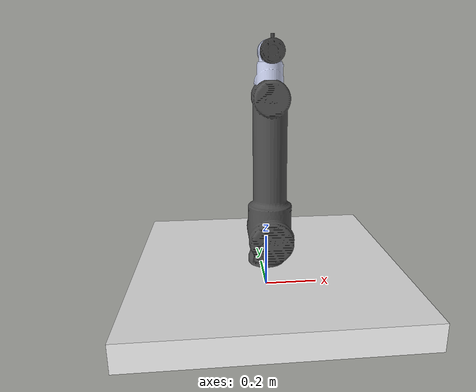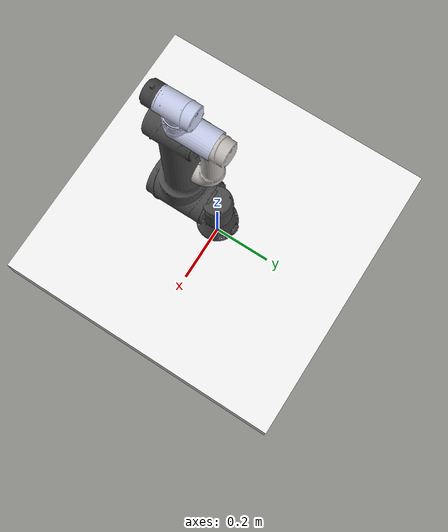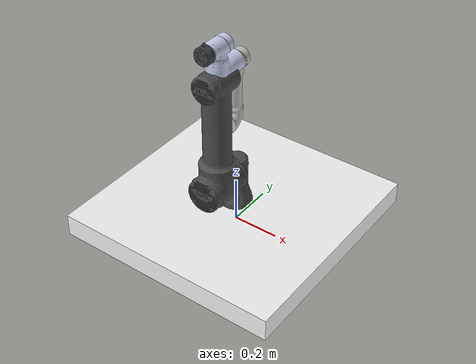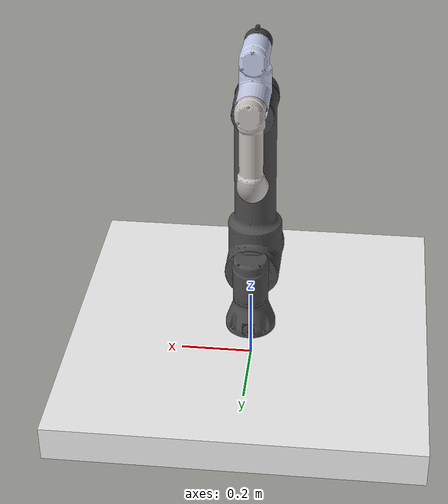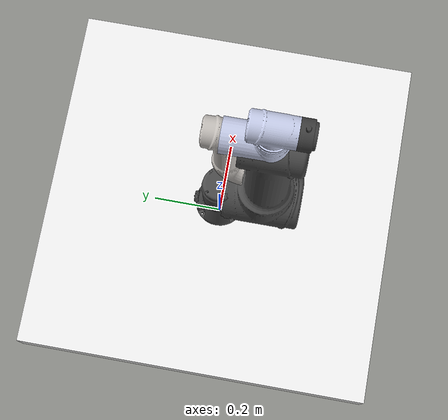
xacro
<?xml version="1.0"?>
<robot name="aubo_e3" xmlns:xacro="http://ros.org/wiki/xacro">

 <!-- Defining the colors used in this robot -->
    <material name="Black">
        <color rgba="0 0 0 1"/>
    </material>

    <material name="White">
        <color rgba="1 1 1 1"/>
    </material>

    <material name="Blue">
        <color rgba="0 0 1 1"/>
    </material>

    <material name="Red">
        <color rgba="1 0 0 1"/>
    </material>

    <material name="Grey">
        <color rgba="0.96 0.96 0.96 1"/>
    </material>

    <!-- Constants -->
    <xacro:property name="M_PI" value="3.14159"/>

<!--/////////////////// DYNAMICS PARAM //////////////////////-->

    <xacro:macro name="I3_Shoulder_Inertia">
        <origin xyz="0.0
                     0.006
                     0.004"
                rpy="0 0 0" />
        <mass value="3.25" />
        <inertia ixx="0.0739"
                 ixy="0"
                 ixz="0"
                 iyy="0.0739"
                 iyz="0.0002"
                 izz="0.05145" />
    </xacro:macro>

    <xacro:macro name="I3_UpperArm_Inertia">
        <origin xyz="0.113
                     0.0
                     0.023"
                rpy="0 0 0" />
        <mass value="5.925" />
        <inertia ixx="0.142345"
                 ixy="0"
                 ixz="0"
                 iyy="2.1276"
                 iyz="0"
                 izz="2.1597" />
    </xacro:macro>

    <xacro:macro name="I3_ForeArm_Inertia">
        <origin xyz="0.183
                     0.0
                     0.12"
                rpy="0 0 0" />
        <mass value="2.37" />
        <inertia ixx="0.01526"
                 ixy="0"
                 ixz="0.005"
                 iyy="0.3348"
                 iyz="0"
                 izz="0.29634" />
    </xacro:macro>

    <xacro:macro name="I3_Wrist1_Inertia">
        <origin xyz="0.0
                     0.0025
                     0.0"
                rpy="0 0 0" />
        <mass value="1.62" />
        <inertia ixx="0.029775"
                 ixy="0"
                 ixz="0"
                 iyy="0.012485"
                 iyz="0.0011"
                 izz="0.0288287" />
    </xacro:macro>

    <xacro:macro name="I3_Wrist2_Inertia">
        <origin xyz="0.0
                     -0.025
                     0.0"
                rpy="0 0 0" />
        <mass value="1.62" />
        <inertia ixx="0.029775"
                 ixy="0"
                 ixz="0"
                 iyy="0.012485"
                 iyz="-0.0011"
                 izz="0.0288287" />
    </xacro:macro>

    <xacro:macro name="I3_Wrist3_Inertia">
        <origin xyz="8.8789E-10
                     0.00040506
                     -0.01865"
                rpy="0 0 0" />
        <mass value="0.25" />
        <inertia ixx="0.008356"
                 ixy="0"
                 ixz="0"
                 iyy="0.009457"
                 iyz="0.0"
                 izz="0.011289" />
    </xacro:macro>

 <!--/////////////////////////////// BASE_LINK ////////////////////////////////////-->

    <link name="base_link">
    <inertial>
      <origin xyz="2.1698E-06 0.00017917 0.036984" rpy="0 1.5708 0" />
      <mass value="0.97332" />
      <inertia ixx="0.0015063" ixy="0" ixz="0" iyy="0.0014907" iyz="0" izz="0.0019063" />
    </inertial>
    <visual>
      <origin xyz="0 0 0" rpy="0 0 0" />
      <geometry>
        <mesh filename="package://aubo_description/meshes/aubo_e3/visual/base_link.DAE" />
      </geometry>
      <material name="">
        <color rgba="0.29804 0.29804 0.29804 1" />
      </material>
    </visual>
    <collision>
      <origin  xyz="0 0 0"  rpy="0 0 0" />
      <geometry>
        <mesh filename="package://aubo_description/meshes/aubo_e3/collision/base_link.STL" />
      </geometry>
    </collision>
  </link>

 <!--/////////////////////////////// SHOULDER_LINK ////////////////////////////////////-->

  <link name="shoulder_Link">
    <inertial>
      <xacro:I3_Shoulder_Inertia />
    </inertial>
    <visual>
      <origin xyz="0 0 0" rpy="0 0 0" />
      <geometry>
        <mesh filename="package://aubo_description/meshes/aubo_e3/visual/shoulder_Link.DAE" />
      </geometry>
      <material name="">
        <color rgba="0.29804 0.29804 0.29804 1" />
      </material>
    </visual>
    <collision>
      <origin xyz="0 0 0" rpy="0 0 0" />
      <geometry>
        <mesh filename="package://aubo_description/meshes/aubo_e3/collision/shoulder_Link.STL" />
      </geometry>
    </collision>
  </link>

 <!--/////////////////////////////// SHOULDER_JOINT ////////////////////////////////////-->

  <joint name="shoulder_joint" type="revolute">
    <origin xyz="0 0 0.157" rpy="0 0 3.1416" />
    <parent link="base_link" />
    <child link="shoulder_Link" />
    <axis xyz="0 0 1" />
    <limit lower="-3.04" upper="3.04" effort="300" velocity="100" />
  </joint>

 <!--/////////////////////////////// UPPERARM_LINK ////////////////////////////////////-->
  <link name="upperArm_Link">
    <inertial>
      <xacro:I3_UpperArm_Inertia />
    </inertial>
    <visual>
      <origin  xyz="0 0 0" rpy="0 0 0" />
      <geometry>
        <mesh filename="package://aubo_description/meshes/aubo_e3/visual/upperArm_Link.DAE" />
      </geometry>
      <material name="">
        <color rgba="0.29804 0.29804 0.29804 1" />
      </material>
    </visual>
    <collision>
      <origin xyz="0 0 0" rpy="0 0 0" />
      <geometry>
        <mesh filename="package://aubo_description/meshes/aubo_e3/collision/upperArm_Link.STL" />
      </geometry>
    </collision>
  </link>

 <!--/////////////////////////////// UPPERARM_JOINT ////////////////////////////////////-->

  <joint name="upperArm_joint" type="revolute">
    <origin xyz="0 0.119 0" rpy="-1.5708 -1.5708 0" />
    <parent link="shoulder_Link" />
    <child link="upperArm_Link" />
    <axis xyz="0 0 1" />
    <limit lower="-3.04" upper="3.04" effort="300" velocity="100" />
  </joint>

 <!--/////////////////////////////// FOREARM_LINK ////////////////////////////////////-->

  <link name="foreArm_Link">
    <inertial>
      <xacro:I3_ForeArm_Inertia />
    </inertial>
    <visual>
      <origin xyz="0 0 0" rpy="0 0 0" />
      <geometry>
        <mesh filename="package://aubo_description/meshes/aubo_e3/visual/foreArm_Link.DAE" />
      </geometry>
      <material name="">
        <color rgba="0.77647 0.75686 0.73725 1" />
      </material>
    </visual>
    <collision>
      <origin xyz="0 0 0" rpy="0 0 0" />
      <geometry>
        <mesh filename="package://aubo_description/meshes/aubo_e3/collision/foreArm_Link.STL" />
      </geometry>
    </collision>
  </link>

 <!--/////////////////////////////// FOREARM_JOINT ////////////////////////////////////-->

  <joint name="foreArm_joint" type="revolute">
    <origin xyz="0.266 0 0" rpy="3.1416 0 0" />
    <parent link="upperArm_Link" />
    <child link="foreArm_Link" />
    <axis xyz="0 0 1" />
    <limit lower="-3.04" upper="3.04" effort="300" velocity="100" />
  </joint>

 <!--/////////////////////////////// WRIST1_LINK ////////////////////////////////////-->

  <link name="wrist1_Link">
    <inertial>
      <xacro:I3_Wrist1_Inertia />
    </inertial>
    <visual>
      <origin xyz="0 0 0" rpy="0 0 0" />
      <geometry>
        <mesh filename="package://aubo_description/meshes/aubo_e3/visual/wrist1_Link.DAE" />
      </geometry>
      <material name="">
        <color rgba="0.79216 0.81961 0.93333 1" />
      </material>
    </visual>
    <collision>
      <origin xyz="0 0 0" rpy="0 0 0" />
      <geometry>
        <mesh filename="package://aubo_description/meshes/aubo_e3/collision/wrist1_Link.STL" />
      </geometry>
    </collision>
  </link>

 <!--/////////////////////////////// WRIST1_JOINT ////////////////////////////////////-->

  <joint name="wrist1_joint" type="revolute">
    <origin xyz="0.2565 0 0" rpy="3.1416 0 1.5708" />
    <parent link="foreArm_Link" />
    <child link="wrist1_Link" />
    <axis xyz="0 0 1" />
    <limit lower="-3.04" upper="3.04" effort="300" velocity="100" />
  </joint>

<!--/////////////////////////////// WRIST2_LINK ////////////////////////////////////-->

  <link name="wrist2_Link">
    <inertial>
     <xacro:I3_Wrist2_Inertia />
    </inertial>
    <visual>
      <origin xyz="0 0 0" rpy="0 0 0" />
      <geometry>
        <mesh filename="package://aubo_description/meshes/aubo_e3/visual/wrist2_Link.DAE" />
      </geometry>
      <material name="">
        <color rgba="0.79216 0.81961 0.93333 1" />
      </material>
    </visual>
    <collision>
      <origin xyz="0 0 0" rpy="0 0 0" />
      <geometry>
        <mesh filename="package://aubo_description/meshes/aubo_e3/collision/wrist2_Link.STL" />
      </geometry>
    </collision>
  </link>

 <!--/////////////////////////////// WRIST2_JOINT ////////////////////////////////////-->

  <joint name="wrist2_joint" type="revolute">
    <origin xyz="0 0.1025 0" rpy="-1.5708 0 0" />
    <parent link="wrist1_Link" />
    <child  link="wrist2_Link" />
    <axis xyz="0 0 1" />
    <limit lower="-3.04" upper="3.04" effort="300" velocity="100" />
  </joint>

<!--/////////////////////////////// WRIST3_LINK ////////////////////////////////////-->

  <link name="wrist3_Link">
    <inertial>
      <xacro:I3_Wrist3_Inertia />
    </inertial>
    <visual>
      <origin xyz="0 0 0" rpy="0 0 0" />
      <geometry>
        <mesh filename="package://aubo_description/meshes/aubo_e3/visual/wrist3_Link.DAE" />
      </geometry>
      <material name="">
        <color rgba="0.25098 0.25098 0.25098 1" />
      </material>
    </visual>
    <collision>
      <origin  xyz="0 0 0" rpy="0 0 0" />
      <geometry>
        <mesh filename="package://aubo_description/meshes/aubo_e3/collision/wrist3_Link.STL" />
      </geometry>
    </collision>
  </link>

<!--/////////////////////////////// WRIST3_JOINT ////////////////////////////////////-->

  <joint name="wrist3_joint" type="revolute">
    <origin xyz="0 -0.094 0" rpy="1.5708 0 0" />
    <parent link="wrist2_Link" />
    <child link="wrist3_Link" />
    <axis xyz="0 0 1" />
    <limit lower="-3.04" upper="3.04" effort="300" velocity="100" />
  </joint>

 <!--/////////////////////////////// WORLD ////////////////////////////////////-->

  <link name="world" />

 <!--/////////////////////////////// WORLD_JOINT ////////////////////////////////////-->

  <joint name="world_joint" type="fixed">
    <origin xyz="0 0 0.05" rpy="0 0 0" />
    <parent link="world" />
    <child link = "pedestal_Link" />
    <origin xyz="0.0 0.0 0.0" rpy="0.0 0.0 0.0" />
  </joint>

<!--/////////////////////////////// pedestal_Link ////////////////////////////////////-->

 <link name="pedestal_Link">
   <visual>
    <geometry>
      <box size="1.0 1.0 0.1" />
    </geometry>
    <material name="">
       <color rgba="0.96 0.96 0.96 1" />
    </material>
   </visual>
  </link>

<!--/////////////////////////////// pedestal_JOINIT ////////////////////////////////////-->

<joint name="pedestal_joint" type="fixed">
   <origin xyz="0 0 0.051" rpy="0 0 0" />
   <parent link="pedestal_Link" />
   <child link = "base_link" />
   <origin xyz="0.0 0.0 0.0" rpy="0.0 0.0 0.0" />
 </joint>

 <!-- /////////////////////////////////   gazebo color   ////////////////////////////////////// -->
 <gazebo reference="pedestal_Link">
    <material>Gazebo/Grey</material>
 </gazebo>

 <!--////////////////////////////////// Transmissions for ROS Control //////////////////////////-->

 <xacro:macro name="aubo_arm_transmission" params="joint_name">
     <transmission name="${joint_name}_trans">
       <type>transmission_interface/SimpleTransmission</type>
       <joint name="${joint_name}">
         <hardwareInterface>hardware_interface/PositionJointInterface</hardwareInterface>
       </joint>
       <actuator name="${joint_name}_motor">
         <mechanicalReduction>1</mechanicalReduction>
       </actuator>
     </transmission>
 </xacro:macro>

 <xacro:aubo_arm_transmission joint_name="shoulder_joint"/>
 <xacro:aubo_arm_transmission joint_name="upperArm_joint"/>
 <xacro:aubo_arm_transmission joint_name="foreArm_joint"/>
 <xacro:aubo_arm_transmission joint_name="wrist1_joint"/>
 <xacro:aubo_arm_transmission joint_name="wrist2_joint"/>
 <xacro:aubo_arm_transmission joint_name="wrist3_joint"/>

 <!-- ros_control plugin -->
 <gazebo>
     <plugin name="gazebo_ros_control" filename="libgazebo_ros_control.so">
         <robotNamespace>/aubo_e3</robotNamespace>
     </plugin>
 </gazebo>

</robot>
